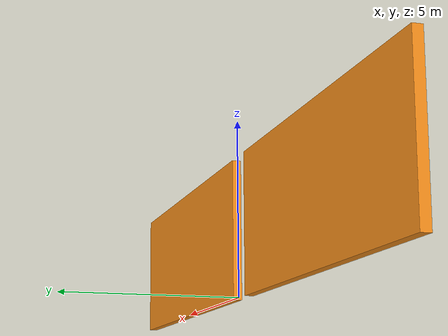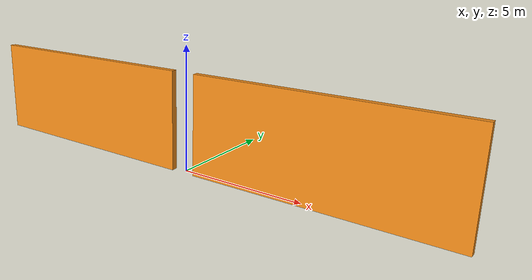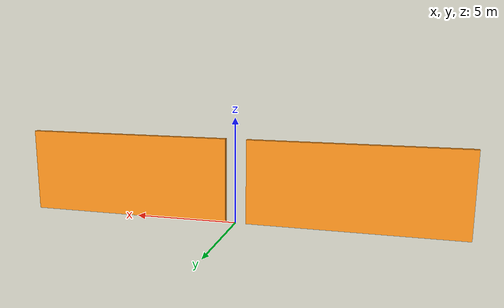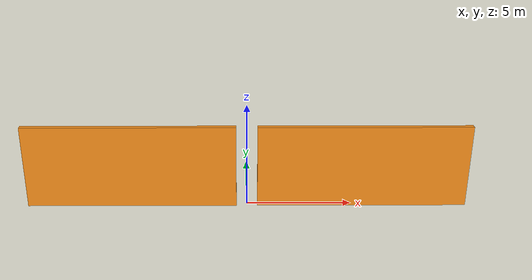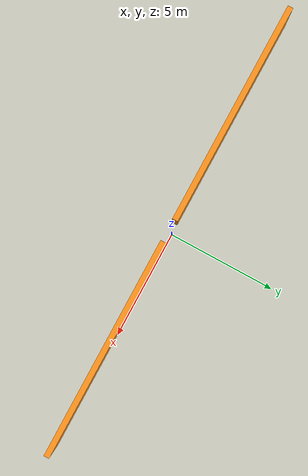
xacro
<?xml version="1.0"?>
<robot xmlns:xacro="http://www.ros.org/wiki/xacro" name="doorway">

    <xacro:property name="wall_length" value="10.0" />
    <xacro:property name="wall_width" value="0.25" />
    <xacro:property name="wall_height" value="4" />

    <xacro:property name="half_wall_length" value="${wall_length/2.0}" />
    <xacro:property name="half_wall_width" value="${wall_width/2.0}" />
    <xacro:property name="half_wall_height" value="${wall_height/2.0}" />

    <xacro:property name="M_PI" value="3.14159265359"/>

    <!-- Default Inertial macro -->
    <xacro:macro name="default_inertial" params="mass">
        <inertial>
            <mass value="${mass}"/>
            <inertia ixx="1.0" ixy="0.0" ixz="0.0"
                     iyy="1.0" iyz="0.0"
                     izz="1.0"/>
        </inertial>
    </xacro:macro>

    <!-- World Link -->
    <link name="world"/>

    <link name="base_link"/>

    <joint name="world_to_base_joint" type="fixed">
        <parent link="world" />
        <child link="base_link" />
    </joint>

    <!-- Wall macro -->
    <xacro:macro name="wall" params="*origin number">
        <link name="wall_${number}_link">
            <visual>
                <geometry>
                    <box size="${wall_length} ${wall_width} ${wall_height}" />
                </geometry>
            </visual>
            <collision>
                <geometry>
                    <box size="${wall_length} ${wall_width} ${wall_height}" />
                </geometry>
            </collision>
            <xacro:default_inertial mass="50" />
        </link>

        <joint name="wall_${number}_joint" type="fixed">
            <parent link="base_link" />
            <child link="wall_${number}_link" />
            <xacro:insert_block name="origin" />
        </joint>

        <gazebo reference="wall_${number}_link">
            <material>Gazebo/Orange</material>
        </gazebo>
    </xacro:macro>

    <!-- Place walls -->
    <xacro:wall number="1">
        <origin xyz="${half_wall_length+0.5} ${-half_wall_width} ${half_wall_height}" rpy="0 0 0" />
    </xacro:wall>

    <xacro:wall number="2">
        <origin xyz="${-half_wall_length - 0.5} ${-half_wall_width} ${half_wall_height}" rpy="0 0 0" />
    </xacro:wall>

</robot>
